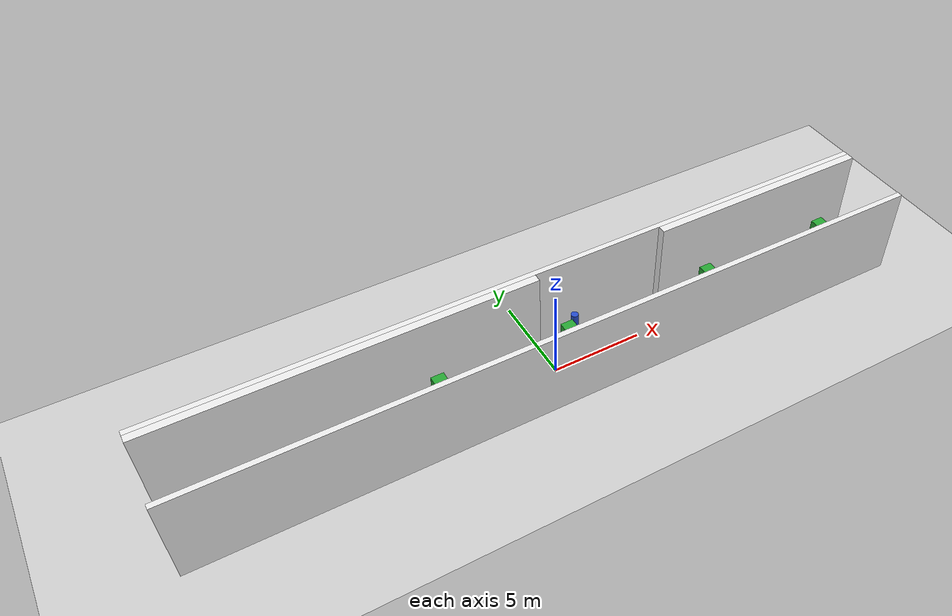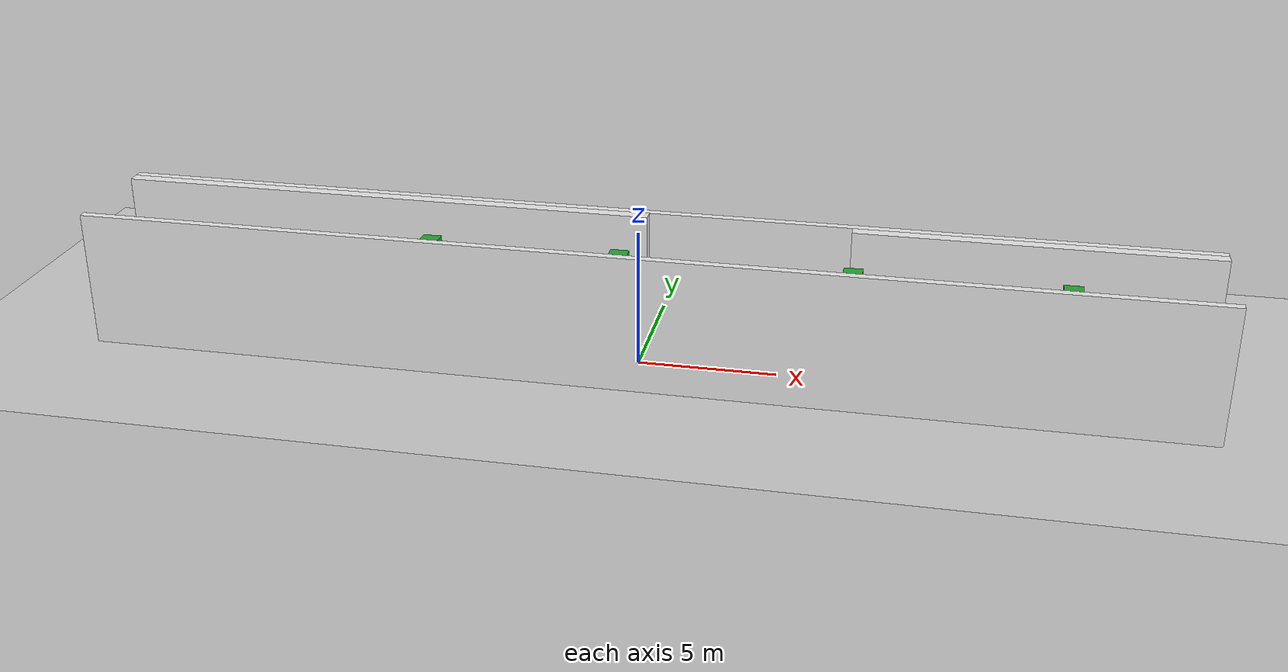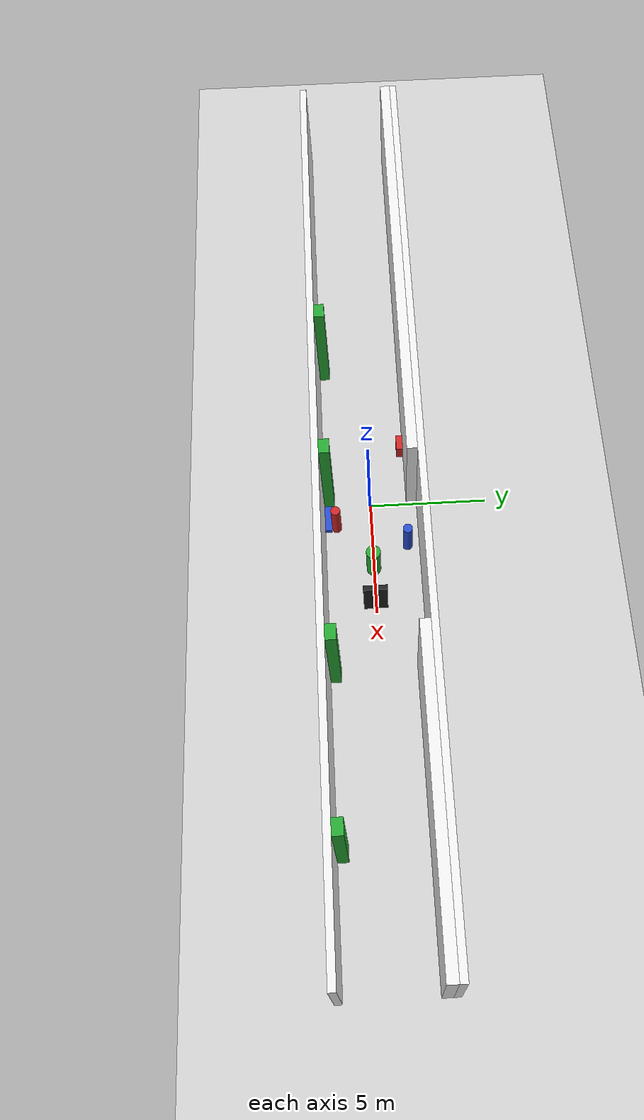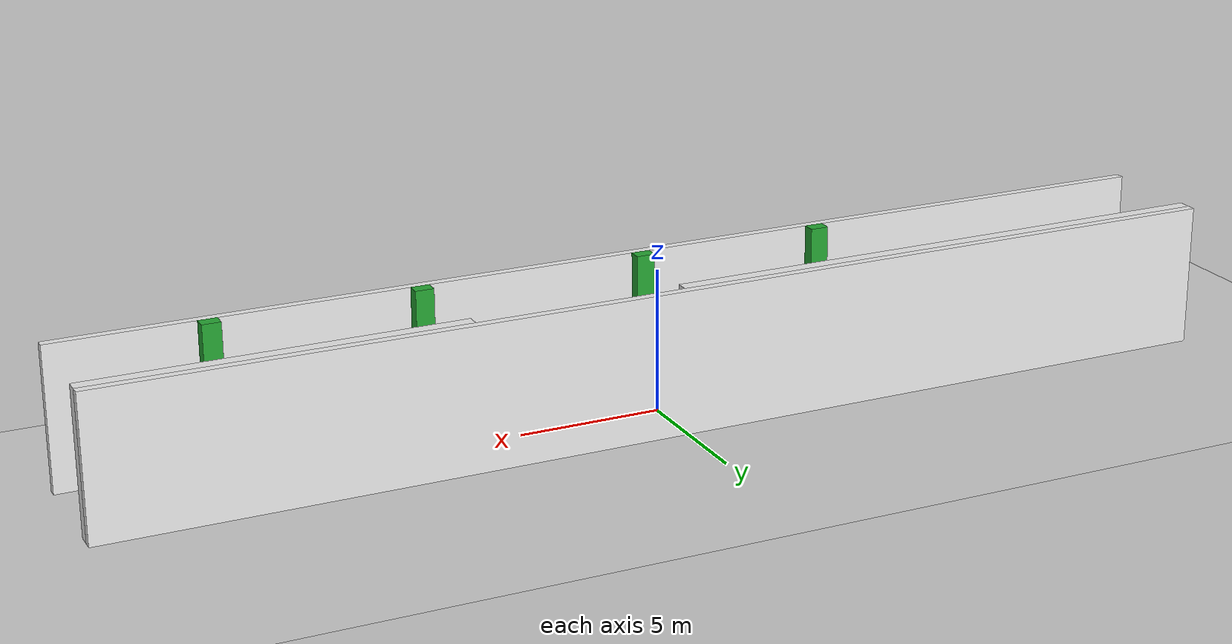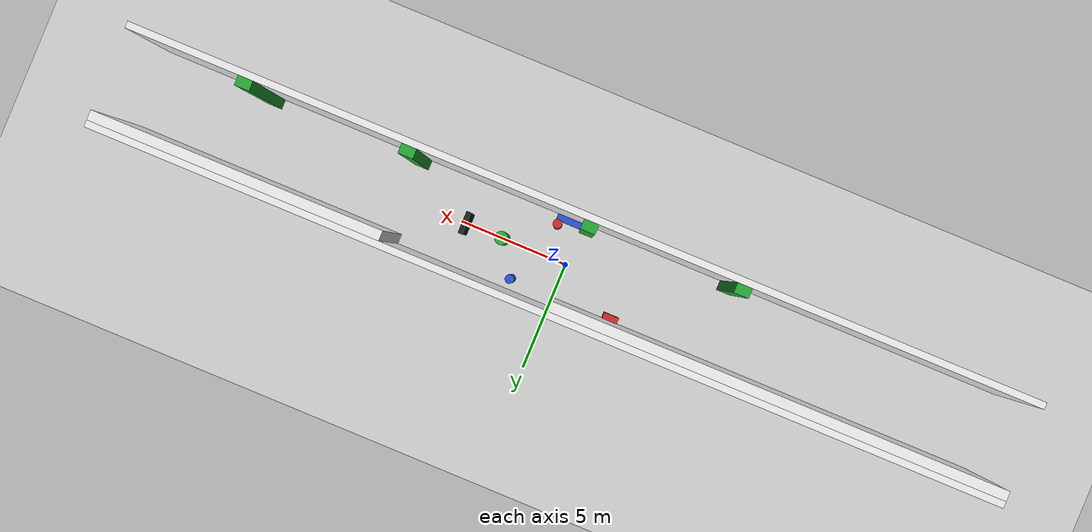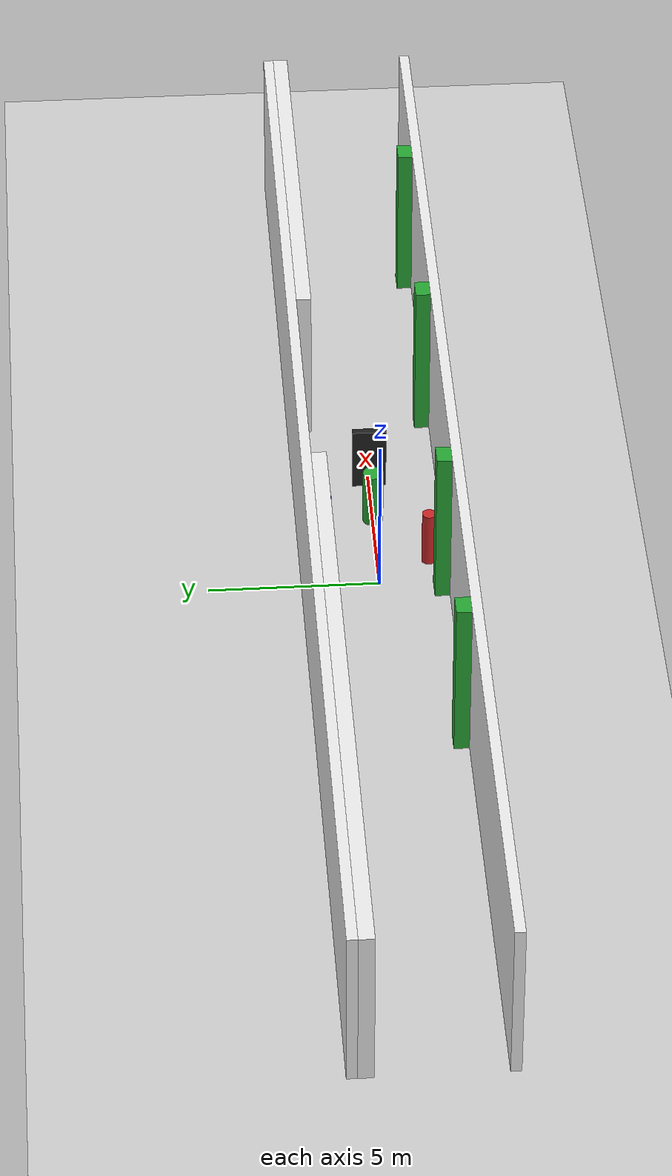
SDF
<sdf version="1.7">
  <world name="default">
    <plugin name="gazebo_ros_state" filename="libgazebo_ros_state.so">
      <ros>
        <namespace>/</namespace>
      </ros>
      <update_rate>10.0</update_rate>
    </plugin>

    <include>
      <uri>model://sun</uri>
    </include>

    <include>
      <uri>model://ground_plane</uri>
    </include>

    <model name="right_wall">
      <pose>0 -2.15 2.5 0 0 0</pose>

      <static>true</static>

      <link name="link">
        <collision name="collision">
          <geometry>
            <box>
              <size>40 0.3 5</size>
            </box>
          </geometry>
        </collision>

        <visual name="visual">
          <geometry>
            <box>
              <size>40 0.3 5</size>
            </box>
          </geometry>
          <material>
            <script>
              <uri>file://media/materials/scripts/gazebo.material</uri>
              <name>Gazebo/White</name>
            </script>
          </material>
        </visual>
      </link>
    </model>

    <model name="left_wall">
      <pose>0 2.15 2.5 0 0 0</pose>

      <static>true</static>

      <link name="link">
        <collision name="collision">
          <geometry>
            <box>
              <size>40 0.3 5</size>
            </box>
          </geometry>
        </collision>

        <visual name="visual">
          <geometry>
            <box>
              <size>40 0.3 5</size>
            </box>
          </geometry>
          <material>
            <script>
              <uri>file://media/materials/scripts/gazebo.material</uri>
              <name>Gazebo/White</name>
            </script>
          </material>
        </visual>
      </link>
    </model>

    <model name="left_front_plus_wall">
      <pose>13.65 1.78 2.5 0 0 0</pose>

      <static>true</static>

      <link name="link">
        <collision name="collision">
          <geometry>
            <box>
              <size>12.7 0.44 5</size>
            </box>
          </geometry>
        </collision>

        <visual name="visual">
          <geometry>
            <box>
              <size>12.7 0.44 5</size>
            </box>
          </geometry>
          <material>
            <script>
              <uri>file://media/materials/scripts/gazebo.material</uri>
              <name>Gazebo/White</name>
            </script>
          </material>
        </visual>
      </link>
    </model>

    <model name="left_behind_plus_wall">
      <pose>-10 1.78 2.5 0 0 0</pose>

      <static>true</static>

      <link name="link">
        <collision name="collision">
          <geometry>
            <box>
              <size>20 0.44 5</size>
            </box>
          </geometry>
        </collision>

        <visual name="visual">
          <geometry>
            <box>
              <size>20 0.44 5</size>
            </box>
          </geometry>
          <material>
            <script>
              <uri>file://media/materials/scripts/gazebo.material</uri>
              <name>Gazebo/White</name>
            </script>
          </material>
        </visual>
      </link>
    </model>

    <model name="box">
      <pose>-2.75 1.42 0.35 0 0 0</pose>

      <static>true</static>

      <link name="link">
        <collision name="collision">
          <geometry>
            <box>
              <size>0.7 0.28 0.71</size>
            </box>
          </geometry>
        </collision>

        <visual name="visual">
          <geometry>
            <box>
              <size>0.7 0.28 0.71</size>
            </box>
          </geometry>
          <material>
            <script>
              <uri>file://media/materials/scripts/gazebo.material</uri>
              <name>Gazebo/Red</name>
            </script>
          </material>
        </visual>
      </link>
    </model>

    <model name="door_step">
      <pose>0.582 -1.85 0.09 0 0 0</pose>

      <static>true</static>

      <link name="link">
        <collision name="collision">
          <geometry>
            <box>
              <size>1.164 0.3 0.18</size>
            </box>
          </geometry>
        </collision>

        <visual name="visual">
          <geometry>
            <box>
              <size>1.164 0.3 0.18</size>
            </box>
          </geometry>
          <material>
            <script>
              <uri>file://media/materials/scripts/gazebo.material</uri>
              <name>Gazebo/Blue</name>
            </script>
          </material>
        </visual>
      </link>
    </model>

    <model name="pillar_1">
      <pose>7.6225 -1.78 2.5 0 0 0</pose>

      <static>true</static>

      <link name="link">
        <collision name="collision">
          <geometry>
            <box>
              <size>0.645 0.44 5</size>
            </box>
          </geometry>
        </collision>

        <visual name="visual">
          <geometry>
            <box>
              <size>0.645 0.44 5</size>
            </box>
          </geometry>
          <material>
            <script>
              <uri>file://media/materials/scripts/gazebo.material</uri>
              <name>Gazebo/Green</name>
            </script>
          </material>
        </visual>
      </link>
    </model>

    <model name="pillar_2">
      <pose>-0.3225 -1.78 2.5 0 0 0</pose>

      <static>true</static>

      <link name="link">
        <collision name="collision">
          <geometry>
            <box>
              <size>0.645 0.44 5</size>
            </box>
          </geometry>
        </collision>

        <visual name="visual">
          <geometry>
            <box>
              <size>0.645 0.44 5</size>
            </box>
          </geometry>
          <material>
            <script>
              <uri>file://media/materials/scripts/gazebo.material</uri>
              <name>Gazebo/Green</name>
            </script>
          </material>
        </visual>
      </link>
    </model>

    <model name="pillar_3">
      <pose>14.74 -1.78 2.5 0 0 0</pose>

      <static>true</static>

      <link name="link">
        <collision name="collision">
          <geometry>
            <box>
              <size>0.645 0.44 5</size>
            </box>
          </geometry>
        </collision>

        <visual name="visual">
          <geometry>
            <box>
              <size>0.645 0.44 5</size>
            </box>
          </geometry>
          <material>
            <script>
              <uri>file://media/materials/scripts/gazebo.material</uri>
              <name>Gazebo/Green</name>
            </script>
          </material>
        </visual>
      </link>
    </model>

    <model name="pillar_4">
      <pose>-7 -1.78 2.5 0 0 0</pose>

      <static>true</static>

      <link name="link">
        <collision name="collision">
          <geometry>
            <box>
              <size>0.645 0.44 5</size>
            </box>
          </geometry>
        </collision>

        <visual name="visual">
          <geometry>
            <box>
              <size>0.645 0.44 5</size>
            </box>
          </geometry>
          <material>
            <script>
              <uri>file://media/materials/scripts/gazebo.material</uri>
              <name>Gazebo/Green</name>
            </script>
          </material>
        </visual>
      </link>
    </model>

  <!-- 从(1.0, -1.5)->(1.0, 1.5)做往返运动 -->
  <model name="cylinder_1">
      <pose>1 -1.5 0.875 0 0 0</pose>
      <static>false</static>
      <link name="link">
        <gravity>false</gravity> <collision name="collision">
          <geometry><cylinder><radius>0.2</radius><length>1.75</length></cylinder></geometry>
        </collision>
        <visual name="visual">
          <geometry><cylinder><radius>0.2</radius><length>1.75</length></cylinder></geometry>
          <material><script><name>Gazebo/Red</name><uri>file://media/materials/scripts/gazebo.material</uri></script></material>
        </visual>
      </link>
    </model>

    <!-- 从(2, 1.5)->(2, -1.5)做往返运动 -->
    <model name="cylinder_2">
      <pose>2.0 1.5 0.875 0 0 0</pose>
      <static>false</static>
      <link name="link">
        <gravity>false</gravity>
        <collision name="collision">
          <geometry><cylinder><radius>0.2</radius><length>1.75</length></cylinder></geometry>
        </collision>
        <visual name="visual">
          <geometry><cylinder><radius>0.2</radius><length>1.75</length></cylinder></geometry>
          <material><script><name>Gazebo/Blue</name><uri>file://media/materials/scripts/gazebo.material</uri></script></material>
        </visual>
      </link>
    </model>

    <!-- 以(4.7, 0)为圆心的圆做圆周运动 -->
    <model name="cylinder_3">
      <pose>3.0 0 0.875 0 0 0</pose>
      <static>false</static>
      <link name="link">
        <gravity>false</gravity>
        <collision name="collision">
          <geometry><cylinder><radius>0.3</radius><length>1.75</length></cylinder></geometry>
        </collision>
        <visual name="visual">
          <geometry><cylinder><radius>0.3</radius><length>1.75</length></cylinder></geometry>
          <material><script><name>Gazebo/Green</name><uri>file://media/materials/scripts/gazebo.material</uri></script></material>
        </visual>
      </link>
    </model>

    <!-- 沿着(4.7, 1.5), (4.7, -1.5)做往返运动 -->
    <model name="move_pillar">
      <pose>4.7 0 1 0 0 0</pose>
      <static>true</static>

      <link name="link">
        <collision name="collision">
          <geometry>
            <box>
              <size>0.2 1 2</size>
            </box>
          </geometry>
        </collision>

        <visual name="visual">
          <geometry>
            <box>
              <size>0.2 1 2</size>
            </box>
          </geometry>
          <material>
            <script>
              <uri>file://media/materials/scripts/gazebo.material</uri>
              <name>Gazebo/Black</name>
            </script>
          </material>
        </visual>
      </link>
    </model>

  </world>
</sdf>
